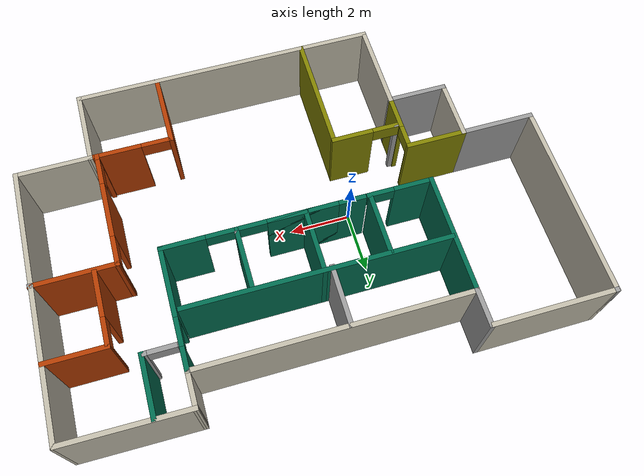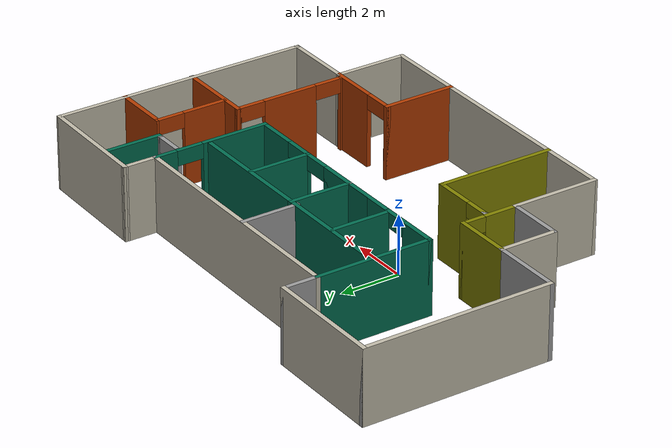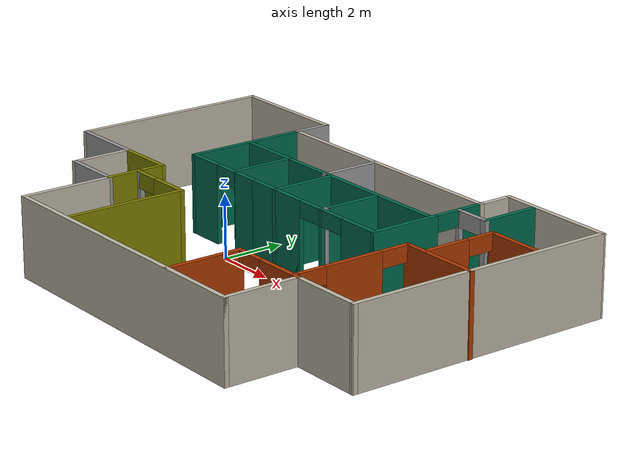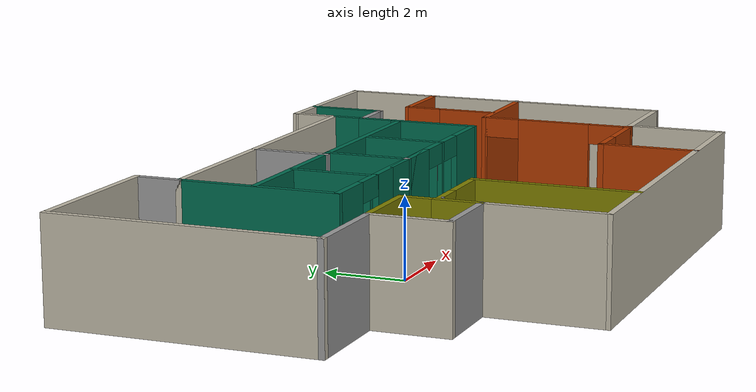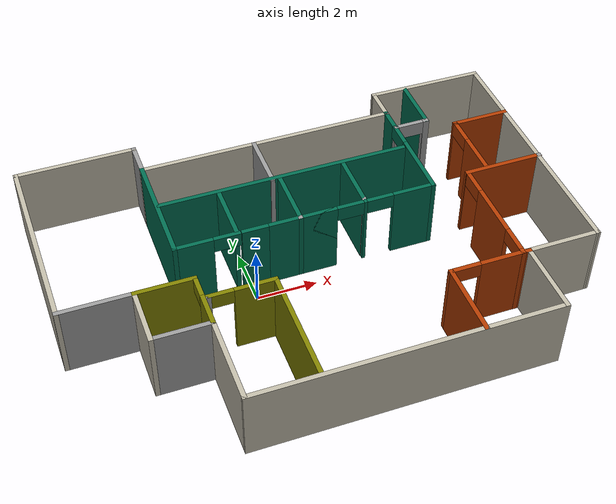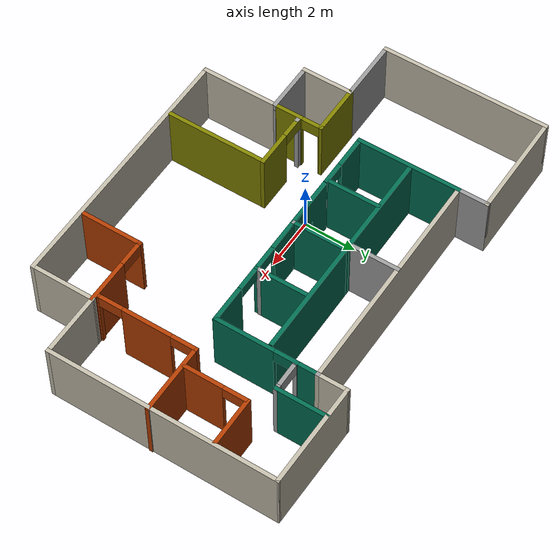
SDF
<?xml version='1.0'?>
<sdf version='1.6'>
  <model name='Building'>
    <pose frame=''>1.88186 0.049827 0 0 -0 0</pose>
    <link name='Wall_10'>
      <collision name='Wall_10_Collision'>
        <geometry>
          <box>
            <size>4 0.15 2.5</size>
          </box>
        </geometry>
        <pose frame=''>0 0 1.25 0 -0 0</pose>
      </collision>
      <visual name='Wall_10_Visual'>
        <pose frame=''>0 0 1.25 0 -0 0</pose>
        <geometry>
          <box>
            <size>4 0.15 2.5</size>
          </box>
        </geometry>
        <material>
          <script>
            <uri>file://media/materials/scripts/gazebo.material</uri>
            <name>Gazebo/Grey</name>
          </script>
          <ambient>0.745098 0.721569 0.654902 1</ambient>
        </material>
        <meta>
          <layer>0</layer>
        </meta>
      </visual>
      <pose frame=''>6.24414 5.46217 0 0 0 -0.011947</pose>
    </link>
    <link name='Wall_11'>
      <collision name='Wall_11_Collision'>
        <geometry>
          <box>
            <size>8.75 0.15 2.5</size>
          </box>
        </geometry>
        <pose frame=''>0 0 1.25 0 -0 0</pose>
      </collision>
      <visual name='Wall_11_Visual'>
        <pose frame=''>0 0 1.25 0 -0 0</pose>
        <geometry>
          <box>
            <size>8.75 0.15 2.5</size>
          </box>
        </geometry>
        <material>
          <script>
            <uri>file://media/materials/scripts/gazebo.material</uri>
            <name>Gazebo/Grey</name>
          </script>
          <ambient>0.745098 0.721569 0.654902 1</ambient>
        </material>
        <meta>
          <layer>0</layer>
        </meta>
      </visual>
      <pose frame=''>8.16914 1.13917 0 0 0 -1.5708</pose>
    </link>
    <link name='Wall_12'>
      <collision name='Wall_12_Collision'>
        <geometry>
          <box>
            <size>2.5 0.15 2.5</size>
          </box>
        </geometry>
        <pose frame=''>0 0 1.25 0 -0 0</pose>
      </collision>
      <visual name='Wall_12_Visual'>
        <pose frame=''>0 0 1.25 0 -0 0</pose>
        <geometry>
          <box>
            <size>2.5 0.15 2.5</size>
          </box>
        </geometry>
        <material>
          <script>
            <uri>file://media/materials/scripts/gazebo.material</uri>
            <name>Gazebo/Grey</name>
          </script>
          <ambient>0.745098 0.721569 0.654902 1</ambient>
        </material>
        <meta>
          <layer>0</layer>
        </meta>
      </visual>
      <pose frame=''>6.99438 -3.1605 0 0 -0 3.14131</pose>
    </link>
    <link name='Wall_13'>
      <collision name='Wall_13_Collision'>
        <geometry>
          <box>
            <size>2.5 0.15 2.5</size>
          </box>
        </geometry>
        <pose frame=''>0 0 1.25 0 -0 0</pose>
      </collision>
      <visual name='Wall_13_Visual'>
        <pose frame=''>0 0 1.25 0 -0 0</pose>
        <geometry>
          <box>
            <size>2.5 0.15 2.5</size>
          </box>
        </geometry>
        <material>
          <script>
            <uri>file://media/materials/scripts/gazebo.material</uri>
            <name>Gazebo/Grey</name>
          </script>
          <ambient>0.745098 0.721569 0.654902 1</ambient>
        </material>
        <meta>
          <layer>0</layer>
        </meta>
      </visual>
      <pose frame=''>5.81961 -4.33517 0 0 0 -1.5708</pose>
    </link>
    <link name='Wall_14'>
      <collision name='Wall_14_Collision'>
        <geometry>
          <box>
            <size>10 0.15 2.5</size>
          </box>
        </geometry>
        <pose frame=''>0 0 1.25 0 -0 0</pose>
      </collision>
      <visual name='Wall_14_Visual'>
        <pose frame=''>0 0 1.25 0 -0 0</pose>
        <geometry>
          <box>
            <size>10 0.15 2.5</size>
          </box>
        </geometry>
        <material>
          <script>
            <uri>file://media/materials/scripts/gazebo.material</uri>
            <name>Gazebo/Grey</name>
          </script>
          <ambient>0.745098 0.721569 0.654902 1</ambient>
        </material>
        <meta>
          <layer>0</layer>
        </meta>
      </visual>
      <pose frame=''>0.894608 -5.51017 0 0 -0 3.14159</pose>
    </link>
    <link name='Wall_15'>
      <collision name='Wall_15_Collision'>
        <geometry>
          <box>
            <size>3 0.15 2.5</size>
          </box>
        </geometry>
        <pose frame=''>0 0 1.25 0 -0 0</pose>
      </collision>
      <visual name='Wall_15_Visual'>
        <pose frame=''>0 0 1.25 0 -0 0</pose>
        <geometry>
          <box>
            <size>3 0.15 2.5</size>
          </box>
        </geometry>
        <material>
          <script>
            <uri>file://media/materials/scripts/gazebo.material</uri>
            <name>Gazebo/Grey</name>
          </script>
          <ambient>0.745098 0.721569 0.654902 1</ambient>
        </material>
        <meta>
          <layer>0</layer>
        </meta>
      </visual>
      <pose frame=''>-4.03062 -4.085 0 0 -0 1.57096</pose>
    </link>
    <link name='Wall_16'>
      <collision name='Wall_16_Collision'>
        <geometry>
          <box>
            <size>2 0.15 2.5</size>
          </box>
        </geometry>
        <pose frame=''>0 0 1.25 0 -0 0</pose>
      </collision>
      <visual name='Wall_16_Visual'>
        <pose frame=''>0 0 1.25 0 -0 0</pose>
        <geometry>
          <box>
            <size>2 0.15 2.5</size>
          </box>
        </geometry>
        <material>
          <script>
            <uri>file://media/materials/scripts/gazebo.material</uri>
            <name>Gazebo/Grey</name>
          </script>
          <ambient>1 1 1 1</ambient>
        </material>
        <meta>
          <layer>0</layer>
        </meta>
      </visual>
      <pose frame=''>-4.95585 -2.65983 0 0 -0 3.14159</pose>
    </link>
    <link name='Wall_17'>
      <collision name='Wall_17_Collision'>
        <geometry>
          <box>
            <size>2 0.15 2.5</size>
          </box>
        </geometry>
        <pose frame=''>0 0 1.25 0 -0 0</pose>
      </collision>
      <visual name='Wall_17_Visual'>
        <pose frame=''>0 0 1.25 0 -0 0</pose>
        <geometry>
          <box>
            <size>2 0.15 2.5</size>
          </box>
        </geometry>
        <material>
          <script>
            <uri>file://media/materials/scripts/gazebo.material</uri>
            <name>Gazebo/Grey</name>
          </script>
          <ambient>0.745098 0.721569 0.654902 1</ambient>
        </material>
        <meta>
          <layer>0</layer>
        </meta>
      </visual>
      <pose frame=''>-5.88086 -1.73483 0 0 -0 1.5708</pose>
    </link>
    <link name='Wall_18'>
      <collision name='Wall_18_Collision'>
        <geometry>
          <box>
            <size>2.471 0.15 2.5</size>
          </box>
        </geometry>
        <pose frame=''>0 0 1.25 0 -0 0</pose>
      </collision>
      <visual name='Wall_18_Visual'>
        <pose frame=''>0 0 1.25 0 -0 0</pose>
        <geometry>
          <box>
            <size>2.471 0.15 2.5</size>
          </box>
        </geometry>
        <material>
          <script>
            <uri>file://media/materials/scripts/gazebo.material</uri>
            <name>Gazebo/Grey</name>
          </script>
          <ambient>1 1 1 1</ambient>
        </material>
        <meta>
          <layer>0</layer>
        </meta>
      </visual>
      <pose frame=''>-7.04136 -0.809827 0 0 -0 3.14159</pose>
    </link>
    <link name='Wall_19'>
      <collision name='Wall_19_Collision'>
        <geometry>
          <box>
            <size>6.47 0.15 2.5</size>
          </box>
        </geometry>
        <pose frame=''>0 0 1.25 0 -0 0</pose>
      </collision>
      <visual name='Wall_19_Visual'>
        <pose frame=''>0 0 1.25 0 -0 0</pose>
        <geometry>
          <box>
            <size>6.47 0.15 2.5</size>
          </box>
        </geometry>
        <material>
          <script>
            <uri>file://media/materials/scripts/gazebo.material</uri>
            <name>Gazebo/Grey</name>
          </script>
          <ambient>0.745098 0.721569 0.654902 1</ambient>
        </material>
        <meta>
          <layer>0</layer>
        </meta>
      </visual>
      <pose frame=''>-8.20186 2.35017 0 0 -0 1.5708</pose>
    </link>
    <link name='Wall_20'>
      <collision name='Wall_20_Collision'>
        <geometry>
          <box>
            <size>0.15 0.15 2.5</size>
          </box>
        </geometry>
        <pose frame=''>0 0 1.25 0 -0 0</pose>
      </collision>
      <visual name='Wall_20_Visual'>
        <pose frame=''>0 0 1.25 0 -0 0</pose>
        <geometry>
          <box>
            <size>0.15 0.15 2.5</size>
          </box>
        </geometry>
        <material>
          <script>
            <uri>file://media/materials/scripts/gazebo.material</uri>
            <name>Gazebo/Grey</name>
          </script>
          <ambient>1 1 1 1</ambient>
        </material>
        <meta>
          <layer>0</layer>
        </meta>
      </visual>
      <pose frame=''>-8.20186 5.51017 0 0 -0 0</pose>
    </link>
    <link name='Wall_22'>
      <collision name='Wall_22_Collision'>
        <geometry>
          <box>
            <size>2 0.15 2.5</size>
          </box>
        </geometry>
        <pose frame=''>0 0 1.25 0 -0 0</pose>
      </collision>
      <visual name='Wall_22_Visual'>
        <pose frame=''>0 0 1.25 0 -0 0</pose>
        <geometry>
          <box>
            <size>2 0.15 2.5</size>
          </box>
        </geometry>
        <material>
          <script>
            <uri>file://media/materials/scripts/gazebo.material</uri>
            <name>Gazebo/Grey</name>
          </script>
          <ambient>0.498039 0.498039 0 1</ambient>
        </material>
        <meta>
          <layer>0</layer>
        </meta>
      </visual>
      <pose frame=''>-4.95585 -0.809827 0 0 -0 0</pose>
    </link>
    <link name='Wall_23'>
      <pose frame=''>-4.03085 -1.73483 0 0 0 -1.5708</pose>
      <visual name='Wall_23_Visual_0'>
        <pose frame=''>-0.94307 0 1.25 0 -0 0</pose>
        <geometry>
          <box>
            <size>0.113861 0.15 2.5</size>
          </box>
        </geometry>
        <material>
          <script>
            <uri>file://media/materials/scripts/gazebo.material</uri>
            <name>Gazebo/Grey</name>
          </script>
          <ambient>0.498039 0.498039 0 1</ambient>
        </material>
        <meta>
          <layer>0</layer>
        </meta>
      </visual>
      <collision name='Wall_23_Collision_0'>
        <geometry>
          <box>
            <size>0.113861 0.15 2.5</size>
          </box>
        </geometry>
        <pose frame=''>-0.94307 0 1.25 0 -0 0</pose>
      </collision>
      <visual name='Wall_23_Visual_1'>
        <pose frame=''>0.40693 0 1.25 0 -0 0</pose>
        <geometry>
          <box>
            <size>1.18614 0.15 2.5</size>
          </box>
        </geometry>
        <material>
          <script>
            <uri>file://media/materials/scripts/gazebo.material</uri>
            <name>Gazebo/Grey</name>
          </script>
          <ambient>0.498039 0.498039 0 1</ambient>
        </material>
        <meta>
          <layer>0</layer>
        </meta>
      </visual>
      <collision name='Wall_23_Collision_1'>
        <geometry>
          <box>
            <size>1.18614 0.15 2.5</size>
          </box>
        </geometry>
        <pose frame=''>0.40693 0 1.25 0 -0 0</pose>
      </collision>
      <visual name='Wall_23_Visual_2'>
        <pose frame=''>-0.536139 0 2.25 0 -0 0</pose>
        <geometry>
          <box>
            <size>0.7 0.15 0.5</size>
          </box>
        </geometry>
        <material>
          <script>
            <uri>file://media/materials/scripts/gazebo.material</uri>
            <name>Gazebo/Grey</name>
          </script>
          <ambient>0.498039 0.498039 0 1</ambient>
        </material>
        <meta>
          <layer>0</layer>
        </meta>
      </visual>
      <collision name='Wall_23_Collision_2'>
        <geometry>
          <box>
            <size>0.7 0.15 0.5</size>
          </box>
        </geometry>
        <pose frame=''>-0.536139 0 2.25 0 -0 0</pose>
      </collision>
    </link>
    <link name='Wall_24'>
      <collision name='Wall_24_Collision'>
        <geometry>
          <box>
            <size>0.15 0.15 2.5</size>
          </box>
        </geometry>
        <pose frame=''>0 0 1.25 0 -0 0</pose>
      </collision>
      <visual name='Wall_24_Visual'>
        <pose frame=''>0 0 1.25 0 -0 0</pose>
        <geometry>
          <box>
            <size>0.15 0.15 2.5</size>
          </box>
        </geometry>
        <material>
          <script>
            <uri>file://media/materials/scripts/gazebo.material</uri>
            <name>Gazebo/Grey</name>
          </script>
          <ambient>1 1 1 1</ambient>
        </material>
        <meta>
          <layer>0</layer>
        </meta>
      </visual>
      <pose frame=''>-4.03085 -2.65983 0 0 -0 0</pose>
    </link>
    <link name='Wall_28'>
      <collision name='Wall_28_Collision'>
        <geometry>
          <box>
            <size>4 0.15 2.5</size>
          </box>
        </geometry>
        <pose frame=''>0 0 1.25 0 -0 0</pose>
      </collision>
      <visual name='Wall_28_Visual'>
        <pose frame=''>0 0 1.25 0 -0 0</pose>
        <geometry>
          <box>
            <size>4 0.15 2.5</size>
          </box>
        </geometry>
        <material>
          <script>
            <uri>file://media/materials/scripts/gazebo.material</uri>
            <name>Gazebo/Grey</name>
          </script>
          <ambient>0.498039 0.498039 0 1</ambient>
        </material>
        <meta>
          <layer>0</layer>
        </meta>
      </visual>
      <pose frame=''>-1.78286 -3.58433 0 0 -0 1.5708</pose>
    </link>
    <link name='Wall_29'>
      <pose frame=''>-2.83286 -1.65932 0 0 -0 3.14159</pose>
      <visual name='Wall_29_Visual_0'>
        <pose frame=''>-0.433114 0 1.25 0 -0 0</pose>
        <geometry>
          <box>
            <size>1.38377 0.15 2.5</size>
          </box>
        </geometry>
        <material>
          <script>
            <uri>file://media/materials/scripts/gazebo.material</uri>
            <name>Gazebo/Grey</name>
          </script>
          <ambient>0.498039 0.498039 0 1</ambient>
        </material>
        <meta>
          <layer>0</layer>
        </meta>
      </visual>
      <collision name='Wall_29_Collision_0'>
        <geometry>
          <box>
            <size>1.38377 0.15 2.5</size>
          </box>
        </geometry>
        <pose frame=''>-0.433114 0 1.25 0 -0 0</pose>
      </collision>
      <visual name='Wall_29_Visual_1'>
        <pose frame=''>0.691886 0 2.25 0 -0 0</pose>
        <geometry>
          <box>
            <size>0.866229 0.15 0.5</size>
          </box>
        </geometry>
        <material>
          <script>
            <uri>file://media/materials/scripts/gazebo.material</uri>
            <name>Gazebo/Grey</name>
          </script>
          <ambient>0.498039 0.498039 0 1</ambient>
        </material>
        <meta>
          <layer>0</layer>
        </meta>
      </visual>
      <collision name='Wall_29_Collision_1'>
        <geometry>
          <box>
            <size>0.866229 0.15 0.5</size>
          </box>
        </geometry>
        <pose frame=''>0.691886 0 2.25 0 -0 0</pose>
      </collision>
    </link>
    <link name='Wall_30'>
      <collision name='Wall_30_Collision'>
        <geometry>
          <box>
            <size>0.16 0.15 2.5</size>
          </box>
        </geometry>
        <pose frame=''>0 0 1.25 0 -0 0</pose>
      </collision>
      <visual name='Wall_30_Visual'>
        <pose frame=''>0 0 1.25 0 -0 0</pose>
        <geometry>
          <box>
            <size>0.16 0.15 2.5</size>
          </box>
        </geometry>
        <material>
          <script>
            <uri>file://media/materials/scripts/gazebo.material</uri>
            <name>Gazebo/Grey</name>
          </script>
          <ambient>1 1 1 1</ambient>
        </material>
        <meta>
          <layer>0</layer>
        </meta>
      </visual>
      <pose frame=''>-3.87786 -1.65932 0 0 -0 0</pose>
    </link>
    <link name='Wall_32'>
      <pose frame=''>4.51961 -3.16017 0 0 -0 3.14159</pose>
      <visual name='Wall_32_Visual_0'>
        <pose frame=''>-0.522117 0 1.25 0 -0 0</pose>
        <geometry>
          <box>
            <size>1.70577 0.15 2.5</size>
          </box>
        </geometry>
        <material>
          <script>
            <uri>file://media/materials/scripts/gazebo.material</uri>
            <name>Gazebo/Grey</name>
          </script>
          <ambient>0.686275 0.227451 0 1</ambient>
        </material>
        <meta>
          <layer>0</layer>
        </meta>
      </visual>
      <collision name='Wall_32_Collision_0'>
        <geometry>
          <box>
            <size>1.70577 0.15 2.5</size>
          </box>
        </geometry>
        <pose frame=''>-0.522117 0 1.25 0 -0 0</pose>
      </collision>
      <visual name='Wall_32_Visual_1'>
        <pose frame=''>1.30288 0 1.25 0 -0 0</pose>
        <geometry>
          <box>
            <size>0.144234 0.15 2.5</size>
          </box>
        </geometry>
        <material>
          <script>
            <uri>file://media/materials/scripts/gazebo.material</uri>
            <name>Gazebo/Grey</name>
          </script>
          <ambient>0.686275 0.227451 0 1</ambient>
        </material>
        <meta>
          <layer>0</layer>
        </meta>
      </visual>
      <collision name='Wall_32_Collision_1'>
        <geometry>
          <box>
            <size>0.144234 0.15 2.5</size>
          </box>
        </geometry>
        <pose frame=''>1.30288 0 1.25 0 -0 0</pose>
      </collision>
      <visual name='Wall_32_Visual_2'>
        <pose frame=''>0.780766 0 2.25 0 -0 0</pose>
        <geometry>
          <box>
            <size>0.9 0.15 0.5</size>
          </box>
        </geometry>
        <material>
          <script>
            <uri>file://media/materials/scripts/gazebo.material</uri>
            <name>Gazebo/Grey</name>
          </script>
          <ambient>0.686275 0.227451 0 1</ambient>
        </material>
        <meta>
          <layer>0</layer>
        </meta>
      </visual>
      <collision name='Wall_32_Collision_2'>
        <geometry>
          <box>
            <size>0.9 0.15 0.5</size>
          </box>
        </geometry>
        <pose frame=''>0.780766 0 2.25 0 -0 0</pose>
      </collision>
    </link>
    <link name='Wall_33'>
      <collision name='Wall_33_Collision'>
        <geometry>
          <box>
            <size>2.5 0.15 2.5</size>
          </box>
        </geometry>
        <pose frame=''>0 0 1.25 0 -0 0</pose>
      </collision>
      <visual name='Wall_33_Visual'>
        <pose frame=''>0 0 1.25 0 -0 0</pose>
        <geometry>
          <box>
            <size>2.5 0.15 2.5</size>
          </box>
        </geometry>
        <material>
          <script>
            <uri>file://media/materials/scripts/gazebo.material</uri>
            <name>Gazebo/Grey</name>
          </script>
          <ambient>0.686275 0.227451 0 1</ambient>
        </material>
        <meta>
          <layer>0</layer>
        </meta>
      </visual>
      <pose frame=''>3.21961 -4.33517 0 0 0 -1.5708</pose>
    </link>
    <link name='Wall_34'>
      <collision name='Wall_34_Collision'>
        <geometry>
          <box>
            <size>0.15 0.15 2.5</size>
          </box>
        </geometry>
        <pose frame=''>0 0 1.25 0 -0 0</pose>
      </collision>
      <visual name='Wall_34_Visual'>
        <pose frame=''>0 0 1.25 0 -0 0</pose>
        <geometry>
          <box>
            <size>0.15 0.15 2.5</size>
          </box>
        </geometry>
        <material>
          <script>
            <uri>file://media/materials/scripts/gazebo.material</uri>
            <name>Gazebo/Grey</name>
          </script>
          <ambient>1 1 1 1</ambient>
        </material>
        <meta>
          <layer>0</layer>
        </meta>
      </visual>
      <pose frame=''>3.21961 -5.51017 0 0 -0 0</pose>
    </link>
    <link name='Wall_36'>
      <pose frame=''>5.61815 -1.23783 0 0 -0 1.5708</pose>
      <visual name='Wall_36_Visual_0'>
        <pose frame=''>-1.89371 0 1.25 0 -0 0</pose>
        <geometry>
          <box>
            <size>0.212579 0.15 2.5</size>
          </box>
        </geometry>
        <material>
          <script>
            <uri>file://media/materials/scripts/gazebo.material</uri>
            <name>Gazebo/Grey</name>
          </script>
          <ambient>0.686275 0.227451 0 1</ambient>
        </material>
        <meta>
          <layer>0</layer>
        </meta>
      </visual>
      <collision name='Wall_36_Collision_0'>
        <geometry>
          <box>
            <size>0.212579 0.15 2.5</size>
          </box>
        </geometry>
        <pose frame=''>-1.89371 0 1.25 0 -0 0</pose>
      </collision>
      <visual name='Wall_36_Visual_1'>
        <pose frame=''>0.054434 0 1.25 0 -0 0</pose>
        <geometry>
          <box>
            <size>1.88371 0.15 2.5</size>
          </box>
        </geometry>
        <material>
          <script>
            <uri>file://media/materials/scripts/gazebo.material</uri>
            <name>Gazebo/Grey</name>
          </script>
          <ambient>0.686275 0.227451 0 1</ambient>
        </material>
        <meta>
          <layer>0</layer>
        </meta>
      </visual>
      <collision name='Wall_36_Collision_1'>
        <geometry>
          <box>
            <size>1.88371 0.15 2.5</size>
          </box>
        </geometry>
        <pose frame=''>0.054434 0 1.25 0 -0 0</pose>
      </collision>
      <visual name='Wall_36_Visual_2'>
        <pose frame=''>1.94815 0 1.25 0 -0 0</pose>
        <geometry>
          <box>
            <size>0.10371 0.15 2.5</size>
          </box>
        </geometry>
        <material>
          <script>
            <uri>file://media/materials/scripts/gazebo.material</uri>
            <name>Gazebo/Grey</name>
          </script>
          <ambient>0.686275 0.227451 0 1</ambient>
        </material>
        <meta>
          <layer>0</layer>
        </meta>
      </visual>
      <collision name='Wall_36_Collision_2'>
        <geometry>
          <box>
            <size>0.10371 0.15 2.5</size>
          </box>
        </geometry>
        <pose frame=''>1.94815 0 1.25 0 -0 0</pose>
      </collision>
      <visual name='Wall_36_Visual_3'>
        <pose frame=''>-1.33742 0 2.25 0 -0 0</pose>
        <geometry>
          <box>
            <size>0.9 0.15 0.5</size>
          </box>
        </geometry>
        <material>
          <script>
            <uri>file://media/materials/scripts/gazebo.material</uri>
            <name>Gazebo/Grey</name>
          </script>
          <ambient>0.686275 0.227451 0 1</ambient>
        </material>
        <meta>
          <layer>0</layer>
        </meta>
      </visual>
      <collision name='Wall_36_Collision_3'>
        <geometry>
          <box>
            <size>0.9 0.15 0.5</size>
          </box>
        </geometry>
        <pose frame=''>-1.33742 0 2.25 0 -0 0</pose>
      </collision>
      <visual name='Wall_36_Visual_4'>
        <pose frame=''>1.44629 0 2.25 0 -0 0</pose>
        <geometry>
          <box>
            <size>0.9 0.15 0.5</size>
          </box>
        </geometry>
        <material>
          <script>
            <uri>file://media/materials/scripts/gazebo.material</uri>
            <name>Gazebo/Grey</name>
          </script>
          <ambient>0.686275 0.227451 0 1</ambient>
        </material>
        <meta>
          <layer>0</layer>
        </meta>
      </visual>
      <collision name='Wall_36_Collision_4'>
        <geometry>
          <box>
            <size>0.9 0.15 0.5</size>
          </box>
        </geometry>
        <pose frame=''>1.44629 0 2.25 0 -0 0</pose>
      </collision>
    </link>
    <link name='Wall_37'>
      <collision name='Wall_37_Collision'>
        <geometry>
          <box>
            <size>2.73371 0.15 2.5</size>
          </box>
        </geometry>
        <pose frame=''>0 0 1.25 0 -0 0</pose>
      </collision>
      <visual name='Wall_37_Visual'>
        <pose frame=''>0 0 1.25 0 -0 0</pose>
        <geometry>
          <box>
            <size>2.73371 0.15 2.5</size>
          </box>
        </geometry>
        <material>
          <script>
            <uri>file://media/materials/scripts/gazebo.material</uri>
            <name>Gazebo/Grey</name>
          </script>
          <ambient>0.686275 0.227451 0 1</ambient>
        </material>
        <meta>
          <layer>0</layer>
        </meta>
      </visual>
      <pose frame=''>6.91 0.687136 0 0 0 -2.9e-05</pose>
    </link>
    <link name='Wall_38'>
      <collision name='Wall_38_Collision'>
        <geometry>
          <box>
            <size>0.15 0.15 2.5</size>
          </box>
        </geometry>
        <pose frame=''>0 0 1.25 0 -0 0</pose>
      </collision>
      <visual name='Wall_38_Visual'>
        <pose frame=''>0 0 1.25 0 -0 0</pose>
        <geometry>
          <box>
            <size>0.15 0.15 2.5</size>
          </box>
        </geometry>
        <material>
          <script>
            <uri>file://media/materials/scripts/gazebo.material</uri>
            <name>Gazebo/Grey</name>
          </script>
          <ambient>1 1 1 1</ambient>
        </material>
        <meta>
          <layer>0</layer>
        </meta>
      </visual>
      <pose frame=''>8.20185 0.687099 0 0 -0 0</pose>
    </link>
    <link name='Wall_40'>
      <pose frame=''>6.31814 1.93617 0 0 -0 1.5708</pose>
      <visual name='Wall_40_Visual_0'>
        <pose frame=''>-0.490246 0 1.25 0 -0 0</pose>
        <geometry>
          <box>
            <size>1.51951 0.15 2.5</size>
          </box>
        </geometry>
        <material>
          <script>
            <uri>file://media/materials/scripts/gazebo.material</uri>
            <name>Gazebo/Grey</name>
          </script>
          <ambient>0.686275 0.227451 0 1</ambient>
        </material>
        <meta>
          <layer>0</layer>
        </meta>
      </visual>
      <collision name='Wall_40_Collision_0'>
        <geometry>
          <box>
            <size>1.51951 0.15 2.5</size>
          </box>
        </geometry>
        <pose frame=''>-0.490246 0 1.25 0 -0 0</pose>
      </collision>
      <visual name='Wall_40_Visual_1'>
        <pose frame=''>1.20975 0 1.25 0 -0 0</pose>
        <geometry>
          <box>
            <size>0.080492 0.15 2.5</size>
          </box>
        </geometry>
        <material>
          <script>
            <uri>file://media/materials/scripts/gazebo.material</uri>
            <name>Gazebo/Grey</name>
          </script>
          <ambient>0.686275 0.227451 0 1</ambient>
        </material>
        <meta>
          <layer>0</layer>
        </meta>
      </visual>
      <collision name='Wall_40_Collision_1'>
        <geometry>
          <box>
            <size>0.080492 0.15 2.5</size>
          </box>
        </geometry>
        <pose frame=''>1.20975 0 1.25 0 -0 0</pose>
      </collision>
      <visual name='Wall_40_Visual_2'>
        <pose frame=''>0.719508 0 2.25 0 -0 0</pose>
        <geometry>
          <box>
            <size>0.9 0.15 0.5</size>
          </box>
        </geometry>
        <material>
          <script>
            <uri>file://media/materials/scripts/gazebo.material</uri>
            <name>Gazebo/Grey</name>
          </script>
          <ambient>0.686275 0.227451 0 1</ambient>
        </material>
        <meta>
          <layer>0</layer>
        </meta>
      </visual>
      <collision name='Wall_40_Collision_2'>
        <geometry>
          <box>
            <size>0.9 0.15 0.5</size>
          </box>
        </geometry>
        <pose frame=''>0.719508 0 2.25 0 -0 0</pose>
      </collision>
    </link>
    <link name='Wall_41'>
      <collision name='Wall_41_Collision'>
        <geometry>
          <box>
            <size>2.001 0.15 2.5</size>
          </box>
        </geometry>
        <pose frame=''>0 0 1.25 0 -0 0</pose>
      </collision>
      <visual name='Wall_41_Visual'>
        <pose frame=''>0 0 1.25 0 -0 0</pose>
        <geometry>
          <box>
            <size>2.001 0.15 2.5</size>
          </box>
        </geometry>
        <material>
          <script>
            <uri>file://media/materials/scripts/gazebo.material</uri>
            <name>Gazebo/Grey</name>
          </script>
          <ambient>0.686275 0.227451 0 1</ambient>
        </material>
        <meta>
          <layer>0</layer>
        </meta>
      </visual>
      <pose frame=''>7.24364 3.11117 0 0 -0 0</pose>
    </link>
    <link name='Wall_44'>
      <collision name='Wall_44_Collision'>
        <geometry>
          <box>
            <size>0.15 0.15 2.5</size>
          </box>
        </geometry>
        <pose frame=''>0 0 1.25 0 -0 0</pose>
      </collision>
      <visual name='Wall_44_Visual'>
        <pose frame=''>0 0 1.25 0 -0 0</pose>
        <geometry>
          <box>
            <size>0.15 0.15 2.5</size>
          </box>
        </geometry>
        <material>
          <script>
            <uri>file://media/materials/scripts/gazebo.material</uri>
            <name>Gazebo/Grey</name>
          </script>
          <ambient>1 1 1 1</ambient>
        </material>
        <meta>
          <layer>0</layer>
        </meta>
      </visual>
      <pose frame=''>5.37778 3.60414 0 0 -0 0</pose>
    </link>
    <link name='Wall_46'>
      <collision name='Wall_46_Collision'>
        <geometry>
          <box>
            <size>4 0.15 2.5</size>
          </box>
        </geometry>
        <pose frame=''>0 0 1.25 0 -0 0</pose>
      </collision>
      <visual name='Wall_46_Visual'>
        <pose frame=''>0 0 1.25 0 -0 0</pose>
        <geometry>
          <box>
            <size>4 0.15 2.5</size>
          </box>
        </geometry>
        <material>
          <script>
            <uri>file://media/materials/scripts/gazebo.material</uri>
            <name>Gazebo/Grey</name>
          </script>
          <ambient>0 0.415686 0.305882 1</ambient>
        </material>
        <meta>
          <layer>0</layer>
        </meta>
      </visual>
      <pose frame=''>-4.28085 2.48517 0 0 0 -1.5708</pose>
    </link>
    <link name='Wall_47'>
      <pose frame=''>0.019145 0.560173 0 0 -0 0</pose>
      <visual name='Wall_47_Visual_0'>
        <pose frame=''>-3.71874 0 1.25 0 -0 0</pose>
        <geometry>
          <box>
            <size>1.31252 0.15 2.5</size>
          </box>
        </geometry>
        <material>
          <script>
            <uri>file://media/materials/scripts/gazebo.material</uri>
            <name>Gazebo/Grey</name>
          </script>
          <ambient>0 0.415686 0.305882 1</ambient>
        </material>
        <meta>
          <layer>0</layer>
        </meta>
      </visual>
      <collision name='Wall_47_Collision_0'>
        <geometry>
          <box>
            <size>1.31252 0.15 2.5</size>
          </box>
        </geometry>
        <pose frame=''>-3.71874 0 1.25 0 -0 0</pose>
      </collision>
      <visual name='Wall_47_Visual_1'>
        <pose frame=''>-0.57823 0 1.25 0 -0 0</pose>
        <geometry>
          <box>
            <size>3.1685 0.15 2.5</size>
          </box>
        </geometry>
        <material>
          <script>
            <uri>file://media/materials/scripts/gazebo.material</uri>
            <name>Gazebo/Grey</name>
          </script>
          <ambient>0 0.415686 0.305882 1</ambient>
        </material>
        <meta>
          <layer>0</layer>
        </meta>
      </visual>
      <collision name='Wall_47_Collision_1'>
        <geometry>
          <box>
            <size>3.1685 0.15 2.5</size>
          </box>
        </geometry>
        <pose frame=''>-0.57823 0 1.25 0 -0 0</pose>
      </collision>
      <visual name='Wall_47_Visual_2'>
        <pose frame=''>-0.134671 0 1.25 0 -0 0</pose>
        <geometry>
          <box>
            <size>2.28138 0.15 2.5</size>
          </box>
        </geometry>
        <material>
          <script>
            <uri>file://media/materials/scripts/gazebo.material</uri>
            <name>Gazebo/Grey</name>
          </script>
          <ambient>0 0.415686 0.305882 1</ambient>
        </material>
        <meta>
          <layer>0</layer>
        </meta>
      </visual>
      <collision name='Wall_47_Collision_2'>
        <geometry>
          <box>
            <size>2.28138 0.15 2.5</size>
          </box>
        </geometry>
        <pose frame=''>-0.134671 0 1.25 0 -0 0</pose>
      </collision>
      <visual name='Wall_47_Visual_3'>
        <pose frame=''>1.96076 0 1.25 0 -0 0</pose>
        <geometry>
          <box>
            <size>0.109477 0.15 2.5</size>
          </box>
        </geometry>
        <material>
          <script>
            <uri>file://media/materials/scripts/gazebo.material</uri>
            <name>Gazebo/Grey</name>
          </script>
          <ambient>0 0.415686 0.305882 1</ambient>
        </material>
        <meta>
          <layer>0</layer>
        </meta>
      </visual>
      <collision name='Wall_47_Collision_3'>
        <geometry>
          <box>
            <size>0.109477 0.15 2.5</size>
          </box>
        </geometry>
        <pose frame=''>1.96076 0 1.25 0 -0 0</pose>
      </collision>
      <visual name='Wall_47_Visual_4'>
        <pose frame=''>3.64525 0 1.25 0 -0 0</pose>
        <geometry>
          <box>
            <size>1.4595 0.15 2.5</size>
          </box>
        </geometry>
        <material>
          <script>
            <uri>file://media/materials/scripts/gazebo.material</uri>
            <name>Gazebo/Grey</name>
          </script>
          <ambient>0 0.415686 0.305882 1</ambient>
        </material>
        <meta>
          <layer>0</layer>
        </meta>
      </visual>
      <collision name='Wall_47_Collision_4'>
        <geometry>
          <box>
            <size>1.4595 0.15 2.5</size>
          </box>
        </geometry>
        <pose frame=''>3.64525 0 1.25 0 -0 0</pose>
      </collision>
      <visual name='Wall_47_Visual_5'>
        <pose frame=''>-2.61892 0 2.25 0 -0 0</pose>
        <geometry>
          <box>
            <size>0.887117 0.15 0.5</size>
          </box>
        </geometry>
        <material>
          <script>
            <uri>file://media/materials/scripts/gazebo.material</uri>
            <name>Gazebo/Grey</name>
          </script>
          <ambient>0 0.415686 0.305882 1</ambient>
        </material>
        <meta>
          <layer>0</layer>
        </meta>
      </visual>
      <collision name='Wall_47_Collision_5'>
        <geometry>
          <box>
            <size>0.887117 0.15 0.5</size>
          </box>
        </geometry>
        <pose frame=''>-2.61892 0 2.25 0 -0 0</pose>
      </collision>
      <visual name='Wall_47_Visual_6'>
        <pose frame=''>1.45602 0 2.25 0 -0 0</pose>
        <geometry>
          <box>
            <size>0.9 0.15 0.5</size>
          </box>
        </geometry>
        <material>
          <script>
            <uri>file://media/materials/scripts/gazebo.material</uri>
            <name>Gazebo/Grey</name>
          </script>
          <ambient>0 0.415686 0.305882 1</ambient>
        </material>
        <meta>
          <layer>0</layer>
        </meta>
      </visual>
      <collision name='Wall_47_Collision_6'>
        <geometry>
          <box>
            <size>0.9 0.15 0.5</size>
          </box>
        </geometry>
        <pose frame=''>1.45602 0 2.25 0 -0 0</pose>
      </collision>
      <visual name='Wall_47_Visual_7'>
        <pose frame=''>1.45602 0 2.25 0 -0 0</pose>
        <geometry>
          <box>
            <size>0.9 0.15 0.5</size>
          </box>
        </geometry>
        <material>
          <script>
            <uri>file://media/materials/scripts/gazebo.material</uri>
            <name>Gazebo/Grey</name>
          </script>
          <ambient>0 0.415686 0.305882 1</ambient>
        </material>
        <meta>
          <layer>0</layer>
        </meta>
      </visual>
      <collision name='Wall_47_Collision_7'>
        <geometry>
          <box>
            <size>0.9 0.15 0.5</size>
          </box>
        </geometry>
        <pose frame=''>1.45602 0 2.25 0 -0 0</pose>
      </collision>
      <visual name='Wall_47_Visual_8'>
        <pose frame=''>2.4655 0 2.25 0 -0 0</pose>
        <geometry>
          <box>
            <size>0.9 0.15 0.5</size>
          </box>
        </geometry>
        <material>
          <script>
            <uri>file://media/materials/scripts/gazebo.material</uri>
            <name>Gazebo/Grey</name>
          </script>
          <ambient>0 0.415686 0.305882 1</ambient>
        </material>
        <meta>
          <layer>0</layer>
        </meta>
      </visual>
      <collision name='Wall_47_Collision_8'>
        <geometry>
          <box>
            <size>0.9 0.15 0.5</size>
          </box>
        </geometry>
        <pose frame=''>2.4655 0 2.25 0 -0 0</pose>
      </collision>
    </link>
    <link name='Wall_48'>
      <pose frame=''>4.31914 2.48517 0 0 -0 1.5708</pose>
      <visual name='Wall_48_Visual_0'>
        <pose frame=''>-0.849139 0 1.25 0 -0 0</pose>
        <geometry>
          <box>
            <size>2.30172 0.15 2.5</size>
          </box>
        </geometry>
        <material>
          <script>
            <uri>file://media/materials/scripts/gazebo.material</uri>
            <name>Gazebo/Grey</name>
          </script>
          <ambient>0 0.415686 0.305882 1</ambient>
        </material>
        <meta>
          <layer>0</layer>
        </meta>
      </visual>
      <collision name='Wall_48_Collision_0'>
        <geometry>
          <box>
            <size>2.30172 0.15 2.5</size>
          </box>
        </geometry>
        <pose frame=''>-0.849139 0 1.25 0 -0 0</pose>
      </collision>
      <visual name='Wall_48_Visual_1'>
        <pose frame=''>1.60086 0 1.25 0 -0 0</pose>
        <geometry>
          <box>
            <size>0.798278 0.15 2.5</size>
          </box>
        </geometry>
        <material>
          <script>
            <uri>file://media/materials/scripts/gazebo.material</uri>
            <name>Gazebo/Grey</name>
          </script>
          <ambient>0 0.415686 0.305882 1</ambient>
        </material>
        <meta>
          <layer>0</layer>
        </meta>
      </visual>
      <collision name='Wall_48_Collision_1'>
        <geometry>
          <box>
            <size>0.798278 0.15 2.5</size>
          </box>
        </geometry>
        <pose frame=''>1.60086 0 1.25 0 -0 0</pose>
      </collision>
      <visual name='Wall_48_Visual_2'>
        <pose frame=''>0.751722 0 2.25 0 -0 0</pose>
        <geometry>
          <box>
            <size>0.9 0.15 0.5</size>
          </box>
        </geometry>
        <material>
          <script>
            <uri>file://media/materials/scripts/gazebo.material</uri>
            <name>Gazebo/Grey</name>
          </script>
          <ambient>0 0.415686 0.305882 1</ambient>
        </material>
        <meta>
          <layer>0</layer>
        </meta>
      </visual>
      <collision name='Wall_48_Collision_2'>
        <geometry>
          <box>
            <size>0.9 0.15 0.5</size>
          </box>
        </geometry>
        <pose frame=''>0.751722 0 2.25 0 -0 0</pose>
      </collision>
    </link>
    <link name='Wall_49'>
      <collision name='Wall_49_Collision'>
        <geometry>
          <box>
            <size>0.15 0.15 2.5</size>
          </box>
        </geometry>
        <pose frame=''>0 0 1.25 0 -0 0</pose>
      </collision>
      <visual name='Wall_49_Visual'>
        <pose frame=''>0 0 1.25 0 -0 0</pose>
        <geometry>
          <box>
            <size>0.15 0.15 2.5</size>
          </box>
        </geometry>
        <material>
          <script>
            <uri>file://media/materials/scripts/gazebo.material</uri>
            <name>Gazebo/Grey</name>
          </script>
          <ambient>1 1 1 1</ambient>
        </material>
        <meta>
          <layer>0</layer>
        </meta>
      </visual>
      <pose frame=''>4.31914 4.41017 0 0 -0 0</pose>
    </link>
    <link name='Wall_51'>
      <collision name='Wall_51_Collision'>
        <geometry>
          <box>
            <size>8.5 0.15 2.5</size>
          </box>
        </geometry>
        <pose frame=''>0 0 1.25 0 -0 0</pose>
      </collision>
      <visual name='Wall_51_Visual'>
        <pose frame=''>0 0 1.25 0 -0 0</pose>
        <geometry>
          <box>
            <size>8.5 0.15 2.5</size>
          </box>
        </geometry>
        <material>
          <script>
            <uri>file://media/materials/scripts/gazebo.material</uri>
            <name>Gazebo/Grey</name>
          </script>
          <ambient>0 0.415686 0.305882 1</ambient>
        </material>
        <meta>
          <layer>0</layer>
        </meta>
      </visual>
      <pose frame=''>-0.033774 2.57779 0 0 -0 0</pose>
    </link>
    <link name='Wall_53'>
      <collision name='Wall_53_Collision'>
        <geometry>
          <box>
            <size>2 0.15 2.5</size>
          </box>
        </geometry>
        <pose frame=''>0 0 1.25 0 -0 0</pose>
      </collision>
      <visual name='Wall_53_Visual'>
        <pose frame=''>0 0 1.25 0 -0 0</pose>
        <geometry>
          <box>
            <size>2 0.15 2.5</size>
          </box>
        </geometry>
        <material>
          <script>
            <uri>file://media/materials/scripts/gazebo.material</uri>
            <name>Gazebo/Grey</name>
          </script>
          <ambient>0 0.415686 0.305882 1</ambient>
        </material>
        <meta>
          <layer>0</layer>
        </meta>
      </visual>
      <pose frame=''>-2.26691 1.61234 0 0 0 -1.5708</pose>
    </link>
    <link name='Wall_57'>
      <collision name='Wall_57_Collision'>
        <geometry>
          <box>
            <size>2 0.15 2.5</size>
          </box>
        </geometry>
        <pose frame=''>0 0 1.25 0 -0 0</pose>
      </collision>
      <visual name='Wall_57_Visual'>
        <pose frame=''>0 0 1.25 0 -0 0</pose>
        <geometry>
          <box>
            <size>2 0.15 2.5</size>
          </box>
        </geometry>
        <material>
          <script>
            <uri>file://media/materials/scripts/gazebo.material</uri>
            <name>Gazebo/Grey</name>
          </script>
          <ambient>0 0.415686 0.305882 1</ambient>
        </material>
        <meta>
          <layer>0</layer>
        </meta>
      </visual>
      <pose frame=''>1.98093 1.61234 0 0 0 -1.5708</pose>
    </link>
    <link name='Wall_58'>
      <collision name='Wall_58_Collision'>
        <geometry>
          <box>
            <size>0.15 0.15 2.5</size>
          </box>
        </geometry>
        <pose frame=''>0 0 1.25 0 -0 0</pose>
      </collision>
      <visual name='Wall_58_Visual'>
        <pose frame=''>0 0 1.25 0 -0 0</pose>
        <geometry>
          <box>
            <size>0.15 0.15 2.5</size>
          </box>
        </geometry>
        <material>
          <script>
            <uri>file://media/materials/scripts/gazebo.material</uri>
            <name>Gazebo/Grey</name>
          </script>
          <ambient>1 1 1 1</ambient>
        </material>
        <meta>
          <layer>0</layer>
        </meta>
      </visual>
      <pose frame=''>1.98093 0.687335 0 0 -0 0</pose>
    </link>
    <link name='Wall_6'>
      <collision name='Wall_6_Collision'>
        <geometry>
          <box>
            <size>4.071 0.15 2.5</size>
          </box>
        </geometry>
        <pose frame=''>0 0 1.25 0 -0 0</pose>
      </collision>
      <visual name='Wall_6_Visual'>
        <pose frame=''>0 0 1.25 0 -0 0</pose>
        <geometry>
          <box>
            <size>4.071 0.15 2.5</size>
          </box>
        </geometry>
        <material>
          <script>
            <uri>file://media/materials/scripts/gazebo.material</uri>
            <name>Gazebo/Grey</name>
          </script>
          <ambient>0.745098 0.721569 0.654902 1</ambient>
        </material>
        <meta>
          <layer>0</layer>
        </meta>
      </visual>
      <pose frame=''>-6.24136 5.51017 0 0 -0 0</pose>
    </link>
    <link name='Wall_60'>
      <collision name='Wall_60_Collision'>
        <geometry>
          <box>
            <size>2.011 0.15 2.5</size>
          </box>
        </geometry>
        <pose frame=''>0 0 1.25 0 -0 0</pose>
      </collision>
      <visual name='Wall_60_Visual'>
        <pose frame=''>0 0 1.25 0 -0 0</pose>
        <geometry>
          <box>
            <size>2.011 0.15 2.5</size>
          </box>
        </geometry>
        <material>
          <script>
            <uri>file://media/materials/scripts/gazebo.material</uri>
            <name>Gazebo/Grey</name>
          </script>
          <ambient>1 1 1 1</ambient>
        </material>
        <meta>
          <layer>0</layer>
        </meta>
      </visual>
      <pose frame=''>-0.446856 3.46767 0 0 0 -1.5708</pose>
    </link>
    <link name='Wall_62'>
      <collision name='Wall_62_Collision'>
        <geometry>
          <box>
            <size>2.168 0.15 2.5</size>
          </box>
        </geometry>
        <pose frame=''>0 0 1.25 0 -0 0</pose>
      </collision>
      <visual name='Wall_62_Visual'>
        <pose frame=''>0 0 1.25 0 -0 0</pose>
        <geometry>
          <box>
            <size>2.168 0.15 2.5</size>
          </box>
        </geometry>
        <material>
          <script>
            <uri>file://media/materials/scripts/gazebo.material</uri>
            <name>Gazebo/Grey</name>
          </script>
          <ambient>0 0.415686 0.305882 1</ambient>
        </material>
        <meta>
          <layer>0</layer>
        </meta>
      </visual>
      <pose frame=''>-0.203856 1.56917 0 0 0 -1.5708</pose>
    </link>
    <link name='Wall_63'>
      <collision name='Wall_63_Collision'>
        <geometry>
          <box>
            <size>0.15 0.15 2.5</size>
          </box>
        </geometry>
        <pose frame=''>0 0 1.25 0 -0 0</pose>
      </collision>
      <visual name='Wall_63_Visual'>
        <pose frame=''>0 0 1.25 0 -0 0</pose>
        <geometry>
          <box>
            <size>0.15 0.15 2.5</size>
          </box>
        </geometry>
        <material>
          <script>
            <uri>file://media/materials/scripts/gazebo.material</uri>
            <name>Gazebo/Grey</name>
          </script>
          <ambient>1 1 1 1</ambient>
        </material>
        <meta>
          <layer>0</layer>
        </meta>
      </visual>
      <pose frame=''>-0.203856 0.560173 0 0 -0 0</pose>
    </link>
    <link name='Wall_65'>
      <collision name='Wall_65_Collision'>
        <geometry>
          <box>
            <size>2 0.15 2.5</size>
          </box>
        </geometry>
        <pose frame=''>0 0 1.25 0 -0 0</pose>
      </collision>
      <visual name='Wall_65_Visual'>
        <pose frame=''>0 0 1.25 0 -0 0</pose>
        <geometry>
          <box>
            <size>2 0.15 2.5</size>
          </box>
        </geometry>
        <material>
          <script>
            <uri>file://media/materials/scripts/gazebo.material</uri>
            <name>Gazebo/Grey</name>
          </script>
          <ambient>0 0.415686 0.305882 1</ambient>
        </material>
        <meta>
          <layer>0</layer>
        </meta>
      </visual>
      <pose frame=''>5.46011 4.52514 0 0 0 -1.5708</pose>
    </link>
    <link name='Wall_66'>
      <pose frame=''>4.91011 3.60014 0 0 -0 3.14159</pose>
      <visual name='Wall_66_Visual_0'>
        <pose frame=''>-0.517786 0 1.25 0 -0 0</pose>
        <geometry>
          <box>
            <size>0.214428 0.15 2.5</size>
          </box>
        </geometry>
        <material>
          <script>
            <uri>file://media/materials/scripts/gazebo.material</uri>
            <name>Gazebo/Grey</name>
          </script>
          <ambient>1 1 1 1</ambient>
        </material>
        <meta>
          <layer>0</layer>
        </meta>
      </visual>
      <collision name='Wall_66_Collision_0'>
        <geometry>
          <box>
            <size>0.214428 0.15 2.5</size>
          </box>
        </geometry>
        <pose frame=''>-0.517786 0 1.25 0 -0 0</pose>
      </collision>
      <visual name='Wall_66_Visual_1'>
        <pose frame=''>0.557214 0 1.25 0 -0 0</pose>
        <geometry>
          <box>
            <size>0.135572 0.15 2.5</size>
          </box>
        </geometry>
        <material>
          <script>
            <uri>file://media/materials/scripts/gazebo.material</uri>
            <name>Gazebo/Grey</name>
          </script>
          <ambient>1 1 1 1</ambient>
        </material>
        <meta>
          <layer>0</layer>
        </meta>
      </visual>
      <collision name='Wall_66_Collision_1'>
        <geometry>
          <box>
            <size>0.135572 0.15 2.5</size>
          </box>
        </geometry>
        <pose frame=''>0.557214 0 1.25 0 -0 0</pose>
      </collision>
      <visual name='Wall_66_Visual_2'>
        <pose frame=''>0.039428 0 2.25 0 -0 0</pose>
        <geometry>
          <box>
            <size>0.9 0.15 0.5</size>
          </box>
        </geometry>
        <material>
          <script>
            <uri>file://media/materials/scripts/gazebo.material</uri>
            <name>Gazebo/Grey</name>
          </script>
          <ambient>1 1 1 1</ambient>
        </material>
        <meta>
          <layer>0</layer>
        </meta>
      </visual>
      <collision name='Wall_66_Collision_2'>
        <geometry>
          <box>
            <size>0.9 0.15 0.5</size>
          </box>
        </geometry>
        <pose frame=''>0.039428 0 2.25 0 -0 0</pose>
      </collision>
    </link>
    <link name='Wall_7'>
      <collision name='Wall_7_Collision'>
        <geometry>
          <box>
            <size>1.25 0.15 2.5</size>
          </box>
        </geometry>
        <pose frame=''>0 0 1.25 0 -0 0</pose>
      </collision>
      <visual name='Wall_7_Visual'>
        <pose frame=''>0 0 1.25 0 -0 0</pose>
        <geometry>
          <box>
            <size>1.25 0.15 2.5</size>
          </box>
        </geometry>
        <material>
          <script>
            <uri>file://media/materials/scripts/gazebo.material</uri>
            <name>Gazebo/Grey</name>
          </script>
          <ambient>1 1 1 1</ambient>
        </material>
        <meta>
          <layer>0</layer>
        </meta>
      </visual>
      <pose frame=''>-4.28085 4.96017 0 0 0 -1.5708</pose>
    </link>
    <link name='Wall_8'>
      <collision name='Wall_8_Collision'>
        <geometry>
          <box>
            <size>8.75 0.15 2.5</size>
          </box>
        </geometry>
        <pose frame=''>0 0 1.25 0 -0 0</pose>
      </collision>
      <visual name='Wall_8_Visual'>
        <pose frame=''>0 0 1.25 0 -0 0</pose>
        <geometry>
          <box>
            <size>8.75 0.15 2.5</size>
          </box>
        </geometry>
        <material>
          <script>
            <uri>file://media/materials/scripts/gazebo.material</uri>
            <name>Gazebo/Grey</name>
          </script>
          <ambient>0.745098 0.721569 0.654902 1</ambient>
        </material>
        <meta>
          <layer>0</layer>
        </meta>
      </visual>
      <pose frame=''>0.019145 4.41017 0 0 -0 0</pose>
    </link>
    <link name='Wall_9'>
      <collision name='Wall_9_Collision'>
        <geometry>
          <box>
            <size>1.225 0.15 2.5</size>
          </box>
        </geometry>
        <pose frame=''>0 0 1.25 0 -0 0</pose>
      </collision>
      <visual name='Wall_9_Visual'>
        <pose frame=''>0 0 1.25 0 -0 0</pose>
        <geometry>
          <box>
            <size>1.225 0.15 2.5</size>
          </box>
        </geometry>
        <material>
          <script>
            <uri>file://media/materials/scripts/gazebo.material</uri>
            <name>Gazebo/Grey</name>
          </script>
          <ambient>0.745098 0.721569 0.654902 1</ambient>
        </material>
        <meta>
          <layer>0</layer>
        </meta>
      </visual>
      <pose frame=''>4.31914 4.94767 0 0 -0 1.5708</pose>
    </link>
    <static>1</static>
  </model>
</sdf>
